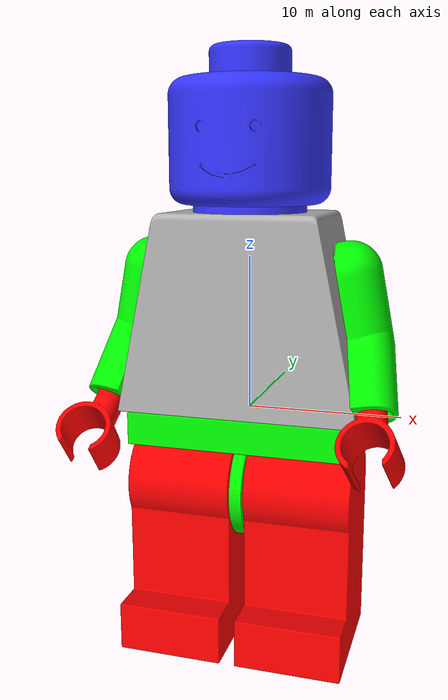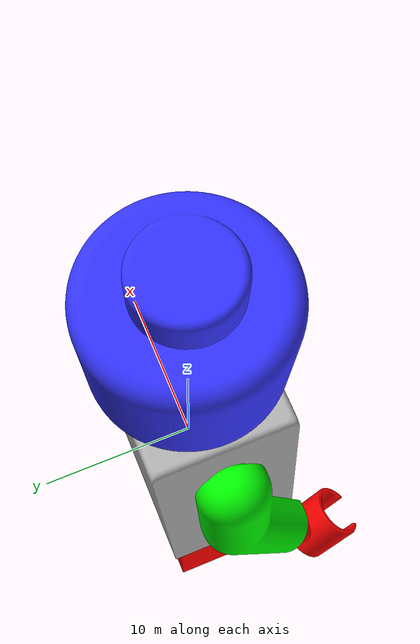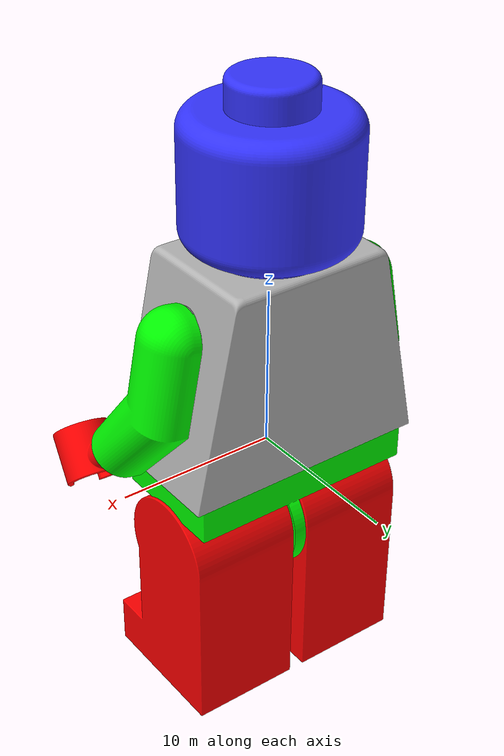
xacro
<?xml version="1.0"?>
<robot xmlns:xacro="http://ros.org/wiki/xacro" name="robot197">

    <xacro:property name="body_mesh" value="package://my_robot_description/meshes/roboticman/torso197.stl" />
    <xacro:property name="head_mesh" value="package://my_robot_description/meshes/roboticman/head197.stl" />
    <xacro:property name="right_arm_mesh"
        value="package://my_robot_description/meshes/roboticman/right_arm197.stl" />
    <xacro:property name="left_arm_mesh"
        value="package://my_robot_description/meshes/roboticman/left_arm197.stl" />
    <xacro:property name="right_fingure_mesh"
        value="package://my_robot_description/meshes/roboticman/right_fingure197.stl" />
    <xacro:property name="left_fingure_mesh"
        value="package://my_robot_description/meshes/roboticman/left_fingure197.stl" />
    <xacro:property name="hips_mesh" value="package://my_robot_description/meshes/roboticman/hips197.stl" />
    <xacro:property name="left_leg_mesh"
        value="package://my_robot_description/meshes/roboticman/left_leg197.stl" />
    <xacro:property name="right_leg_mesh"
        value="package://my_robot_description/meshes/roboticman/right_leg197.stl" />

    <xacro:property name="body_scale" value="1 1 1" />
    <xacro:property name="head_scale" value="1 1 1" />
    <xacro:property name="right_arm_scale" value="1 1 1" />
    <xacro:property name="left_arm_scale" value="1 1 1" />
    <xacro:property name="right_fingure_scale" value="1 1 1" />
    <xacro:property name="left_fingure_scale" value="1 1 1" />
    <xacro:property name="hips_scale" value="1 1 1" />
    <xacro:property name="left_leg_scale" value="1 1 1" />
    <xacro:property name="right_leg_scale" value="1 1 1" />

    <link name="base_link">
        <visual>
            <geometry>
                <mesh filename="${body_mesh}" scale="${body_scale}" />
            </geometry>
            <origin xyz="0 0 0.1" rpy="0 0 0" />
            <material name="grey">
                <color rgba="0.7 0.7 0.7 1.0" />
            </material>
        </visual>
    </link>

    <link name="head_link">
        <visual>
            <geometry>
                <mesh filename="${head_mesh}" scale="${head_scale}" />
            </geometry>
            <origin xyz="0 0 0" rpy="0 0 0" />
            <material name="blue">
                <color rgba="0.2 0.2 1.0 1.0" />
            </material>
        </visual>
    </link>

    <link name="right_arm">
        <visual>
            <geometry>
                <mesh filename="${right_arm_mesh}" scale="${right_arm_scale}" />
            </geometry>
            <material name="green">
                <color rgba="0 1 0 1" />
            </material>
        </visual>
    </link>

    <link name="left_arm">
        <visual>
            <geometry>
                <mesh filename="${left_arm_mesh}" scale="${left_arm_scale}" />
            </geometry>
            <material name="green">
                <color rgba="0 1 0 1" />
            </material>
        </visual>
    </link>

    <link name="right_fingure">
        <visual>
            <geometry>
                <mesh filename="${right_fingure_mesh}" scale="${right_fingure_scale}" />
            </geometry>
            <material name="red">
                <color rgba="1 0 0 1" />
            </material>
        </visual>
    </link>

    <link name="left_fingure">
        <visual>
            <geometry>
                <mesh filename="${left_fingure_mesh}" scale="${left_fingure_scale}" />
            </geometry>
            <material name="red">
                <color rgba="1 0 0 1" />
            </material>
        </visual>
    </link>

    <link name="hips197">
        <visual>
            <geometry>
                <mesh filename="${hips_mesh}" scale="${hips_scale}" />
            </geometry>
            <material name="green">
                <color rgba="0 1 0 1" />
            </material>
        </visual>
    </link>

    <link name="left_leg">
        <visual>
            <geometry>
                <mesh filename="${left_leg_mesh}" scale="${left_leg_scale}" />
            </geometry>
            <material name="red">
                <color rgba="1 0 0 1" />
            </material>
        </visual>
    </link>

    <link name="right_leg">
        <visual>
            <geometry>
                <mesh filename="${right_leg_mesh}" scale="${right_leg_scale}" />
            </geometry>
            <material name="red">
                <color rgba="1 0 0 1" />
            </material>
        </visual>
    </link>

    <joint name="body_to_head" type="revolute">
        <parent link="base_link" />
        <child link="head_link" />
        <origin xyz="0 0 12" rpy="0 0 0" />
        <axis xyz="0 0 1" />
        <limit lower="-1.57" upper="1.57" effort="5" velocity="2" />
        <dynamics damping="0.2" friction="0.1" />
    </joint>

    <joint name="body_to_right_arm" type="revolute">
        <parent link="base_link" />
        <child link="right_arm" />
        <origin xyz="-6 0 9" rpy="0 0.192 0" />
        <axis xyz="1 0 0" />
        <limit lower="-1.57" upper="1.57" effort="5" velocity="2" />
        <dynamics damping="0.2" friction="0.1" />
    </joint>

    <joint name="body_to_left_arm" type="revolute">
        <parent link="base_link" />
        <child link="left_arm" />
        <origin xyz="6 0 9" rpy="1.57 0.192 3.1416" />
        <axis xyz="1 0 0" />
        <limit lower="-1.57" upper="1.57" effort="5" velocity="2" />
        <dynamics damping="0.2" friction="0.1" />
    </joint>

    <joint name="right_arm_right_fingure" type="revolute">
        <parent link="right_arm" />
        <child link="right_fingure" />
        <origin xyz="-1 -5.375 -11" rpy="-0.785 0 0" />
        <axis xyz="0 0 1" />
        <limit lower="-1.57" upper="1.57" effort="5" velocity="2" />
        <dynamics damping="0.2" friction="0.1" />

    </joint>

    <joint name="left_arm_left_fingure" type="revolute">
        <parent link="left_arm" />
        <child link="left_fingure" />
        <origin xyz="-1 -10.5 -5.5" rpy="-0.785 3.1416 3.1416" />
        <axis xyz="0 0 1" />
        <limit lower="-1.57" upper="1.57" effort="5" velocity="2" />
        <dynamics damping="0.2" friction="0.1" />
    </joint>

    <joint name="body_to_hips" type="fixed">
        <parent link="base_link" />
        <child link="hips197" />
        <origin xyz="0 0 0" rpy="0 0 0" />
    </joint>

    <joint name="hips_to_left_leg" type="revolute">
        <parent link="hips197" />
        <child link="left_leg" />
        <origin xyz="0.5 0 -5.25" rpy="0 0 1.57" />
        <axis xyz="0 1 0" />
        <limit lower="-1.57" upper="1.57" effort="5" velocity="2" />
        <dynamics damping="0.2" friction="0.1" />
    </joint>

    <joint name="hips_to_right_leg" type="revolute">
        <parent link="hips197" />
        <child link="right_leg" />
        <origin xyz="-0.5 0 -5.25" rpy="3.1416 0 1.57" />
        <axis xyz="0 1 0" />
        <limit lower="-1.57" upper="1.57" effort="5" velocity="2" />
        <dynamics damping="0.2" friction="0.1" />
    </joint>

</robot>
